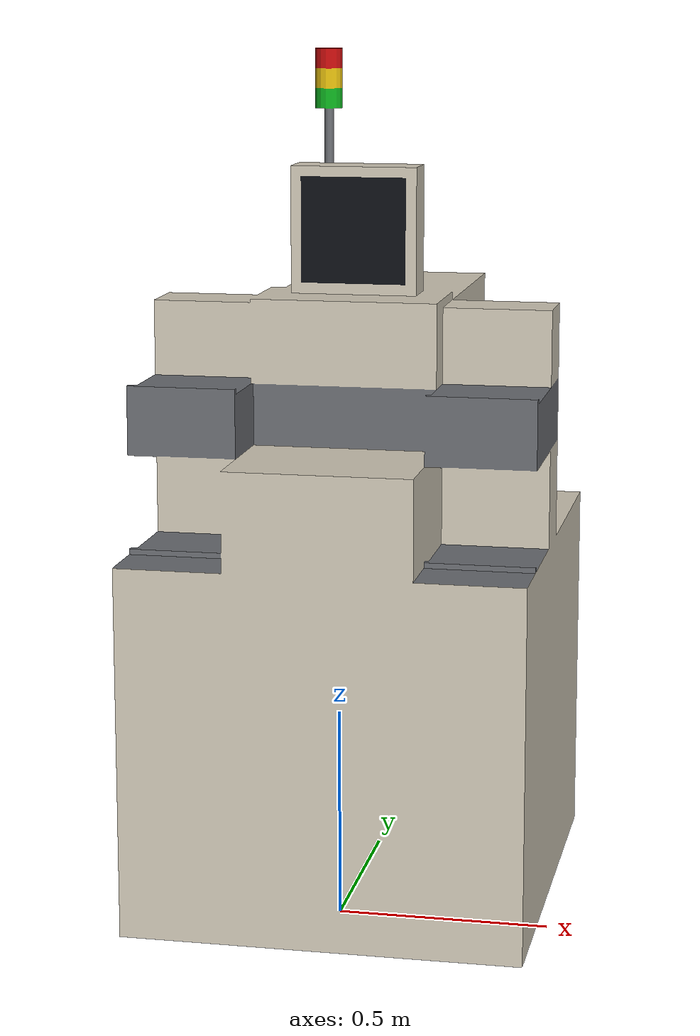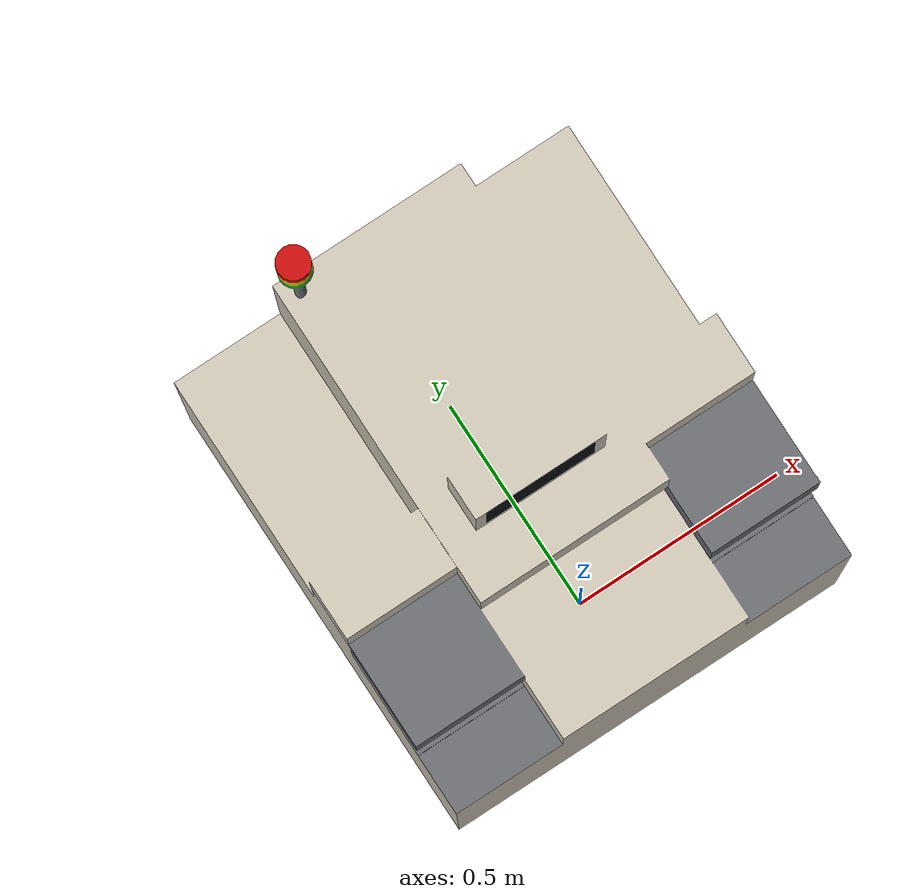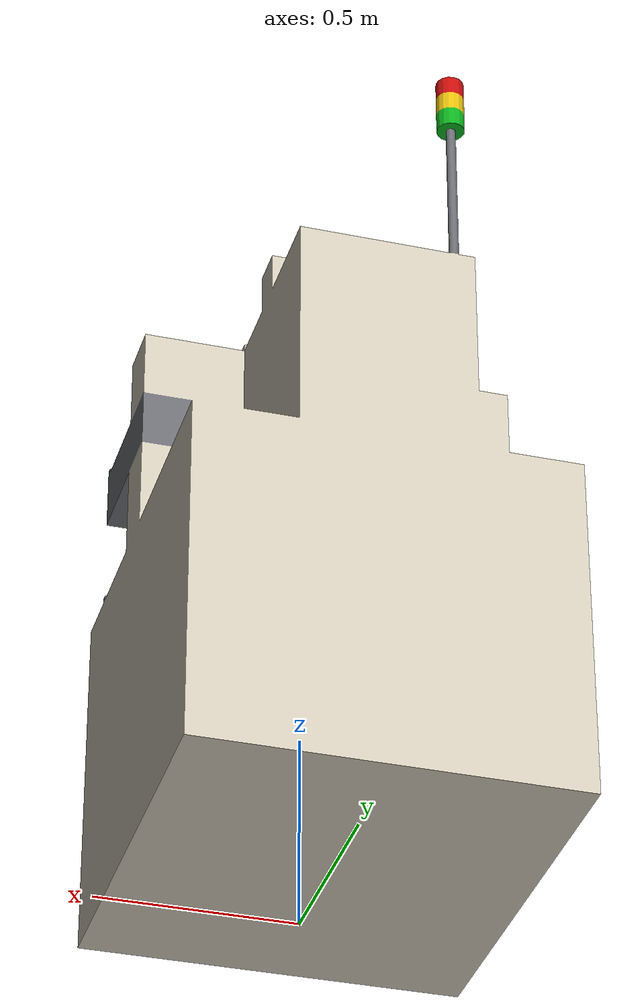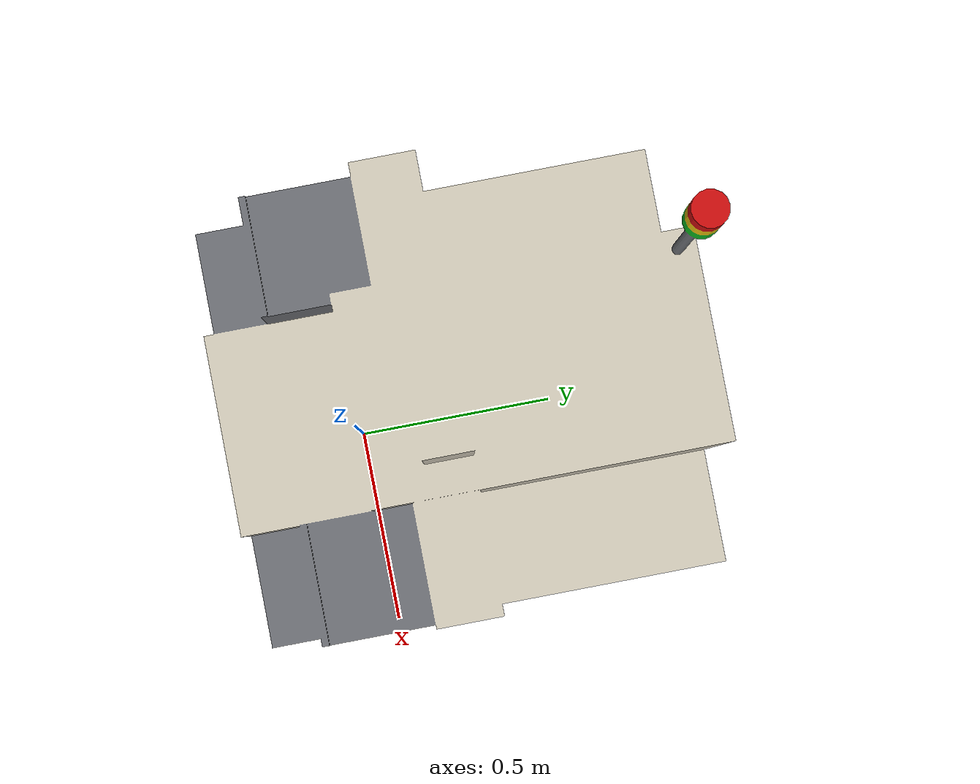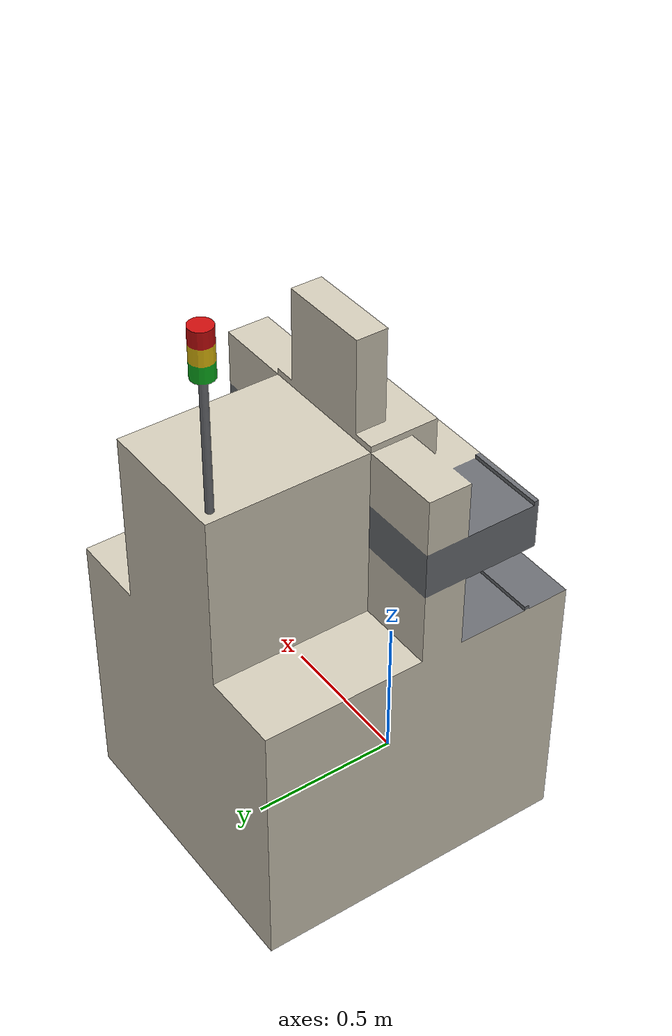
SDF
<?xml version='1.0'?>
<sdf version='1.7'>
  <model name='wirebonder'>
    <static>true</static>
    <pose>0 0 0 0 0 0</pose>
    <link name='wirebonder_link'>
      <pose>0 0 0 0 0 0</pose>
      <visual name='wirebonder_visual'>
        <geometry>
          <mesh>
            <uri>model://wirebonder/meshes/wirebonder.dae</uri>
          </mesh>
        </geometry>
      </visual>
      <!-- per-part collision: one STL per box so the stepped recesses stay open -->
      <collision name='Beacon_Green'>
        <geometry><mesh><uri>model://wirebonder/collision/Beacon_Green.stl</uri></mesh></geometry>
      </collision>
      <collision name='Beacon_Red'>
        <geometry><mesh><uri>model://wirebonder/collision/Beacon_Red.stl</uri></mesh></geometry>
      </collision>
      <collision name='Beacon_Yellow'>
        <geometry><mesh><uri>model://wirebonder/collision/Beacon_Yellow.stl</uri></mesh></geometry>
      </collision>
      <collision name='Beacon_pole'>
        <geometry><mesh><uri>model://wirebonder/collision/Beacon_pole.stl</uri></mesh></geometry>
      </collision>
      <collision name='Cube_A'>
        <geometry><mesh><uri>model://wirebonder/collision/Cube_A.stl</uri></mesh></geometry>
      </collision>
      <collision name='Cube_A_back'>
        <geometry><mesh><uri>model://wirebonder/collision/Cube_A_back.stl</uri></mesh></geometry>
      </collision>
      <collision name='Cube_B'>
        <geometry><mesh><uri>model://wirebonder/collision/Cube_B.stl</uri></mesh></geometry>
      </collision>
      <collision name='Cube_B_back'>
        <geometry><mesh><uri>model://wirebonder/collision/Cube_B_back.stl</uri></mesh></geometry>
      </collision>
      <collision name='Cube_C'>
        <geometry><mesh><uri>model://wirebonder/collision/Cube_C.stl</uri></mesh></geometry>
      </collision>
      <collision name='Cube_D'>
        <geometry><mesh><uri>model://wirebonder/collision/Cube_D.stl</uri></mesh></geometry>
      </collision>
      <collision name='Cube_E'>
        <geometry><mesh><uri>model://wirebonder/collision/Cube_E.stl</uri></mesh></geometry>
      </collision>
      <collision name='Cube_F'>
        <geometry><mesh><uri>model://wirebonder/collision/Cube_F.stl</uri></mesh></geometry>
      </collision>
      <collision name='Cube_G_L'>
        <geometry><mesh><uri>model://wirebonder/collision/Cube_G_L.stl</uri></mesh></geometry>
      </collision>
      <collision name='Cube_G_R'>
        <geometry><mesh><uri>model://wirebonder/collision/Cube_G_R.stl</uri></mesh></geometry>
      </collision>
      <collision name='Cube_H_L'>
        <geometry><mesh><uri>model://wirebonder/collision/Cube_H_L.stl</uri></mesh></geometry>
      </collision>
      <collision name='Cube_H_R'>
        <geometry><mesh><uri>model://wirebonder/collision/Cube_H_R.stl</uri></mesh></geometry>
      </collision>
      <collision name='Cube_I'>
        <geometry><mesh><uri>model://wirebonder/collision/Cube_I.stl</uri></mesh></geometry>
      </collision>
    </link>
  </model>
</sdf>
